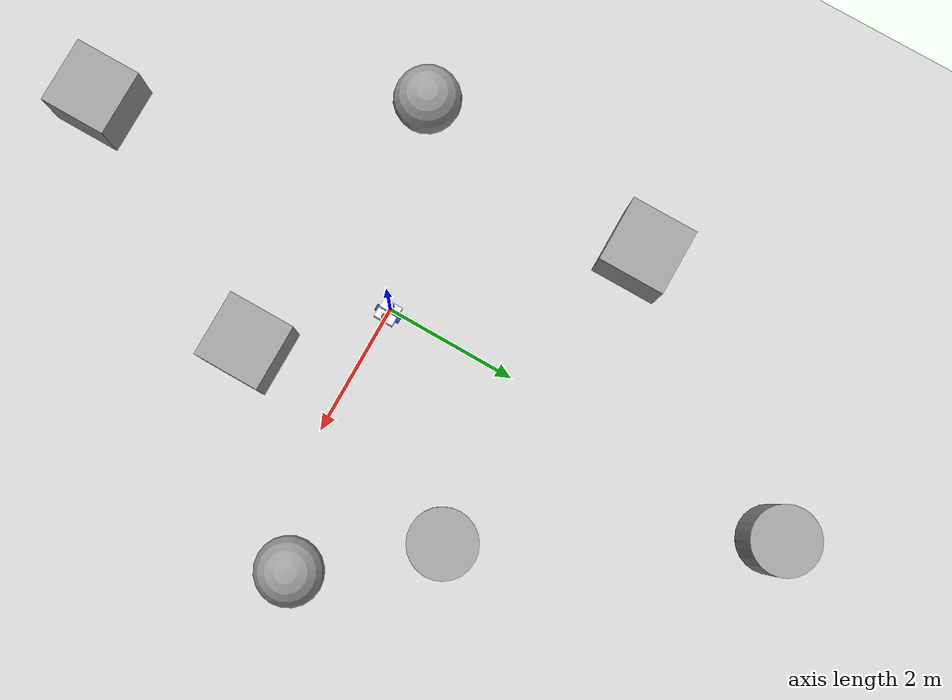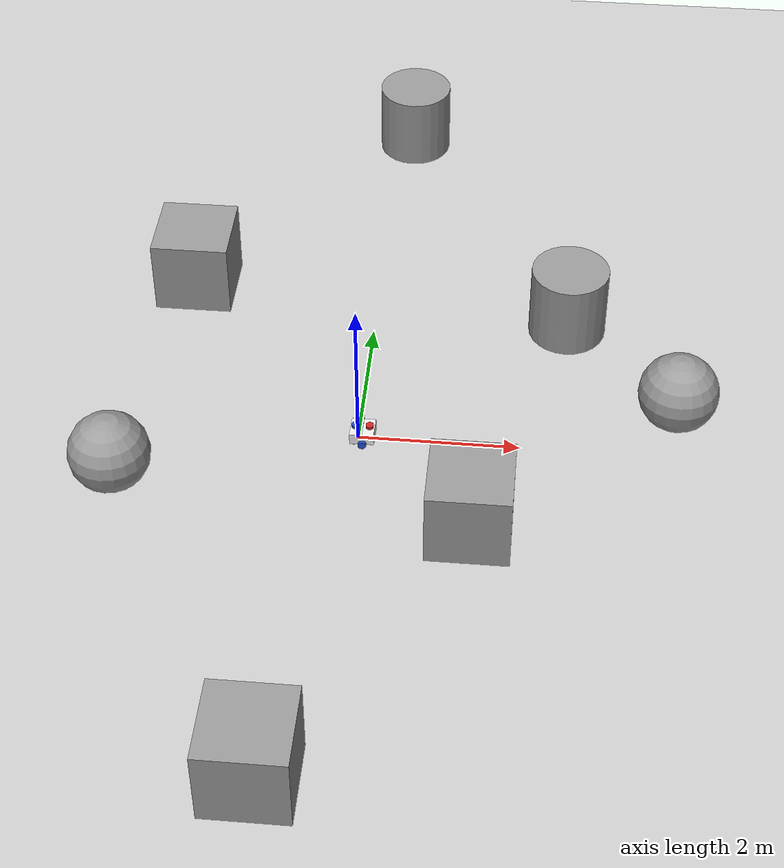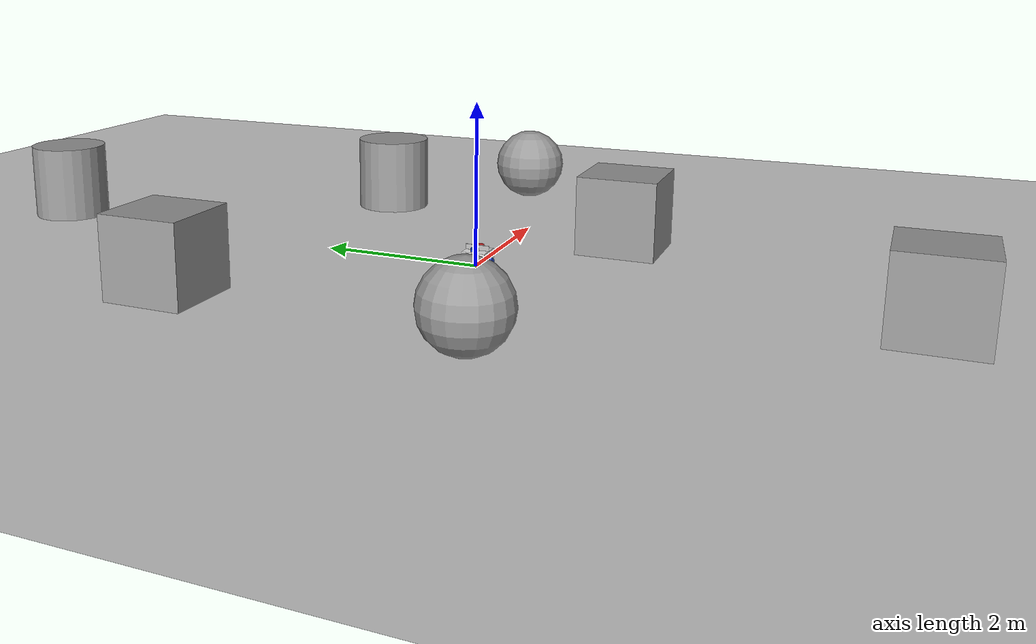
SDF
<sdf version="1.7">
 <world name="default">
  <light name="sun" type="directional">
   <pose>0 0 10 0 -0 0</pose>
   <diffuse>0.8 0.8 0.8 1</diffuse>
   <specular>0.2 0.2 0.2 1</specular>
   <attenuation>
    <range>1000</range>
    <constant>0.9</constant>
    <linear>0.01</linear>
    <quadratic>0.001</quadratic>
   </attenuation>
   <direction>-0.5 0.1 -0.9</direction>
   <spot><inner_angle>0</inner_angle><outer_angle>0</outer_angle><falloff>0</falloff></spot>
  </light>
  <model name="ground_plane">
   <static>1</static>
   <link name="link">
    <collision name="collision">
     <geometry><plane><normal>0 0 1</normal><size>100 100</size></plane></geometry>
     <surface><friction><ode><mu>100</mu><mu2>50</mu2></ode></friction></surface>
    </collision>
    <visual name="visual">
     <cast_shadows>0</cast_shadows>
     <geometry><plane><normal>0 0 1</normal><size>100 100</size></plane></geometry>
     <material>
      <script><uri>file://media/materials/scripts/gazebo.material</uri><name>Gazebo/Grey</name></script>
     </material>
    </visual>
   </link>
  </model>
  <gravity>0 0 -9.8</gravity>
  <magnetic_field>6e-06 2.3e-05 -4.2e-05</magnetic_field>
  <atmosphere type="adiabatic"/>
  <physics type="ode">
   <max_step_size>0.001</max_step_size>
   <real_time_factor>1</real_time_factor>
   <real_time_update_rate>1000</real_time_update_rate>
  </physics>
  <scene><ambient>0.4 0.4 0.4 1</ambient><background>0.7 0.7 0.7 1</background><shadows>1</shadows></scene>
  <audio><device>default</device></audio>
  <spherical_coordinates>
   <surface_model>EARTH_WGS84</surface_model>
   <latitude_deg>0</latitude_deg>
   <longitude_deg>0</longitude_deg>
   <elevation>0</elevation>
   <heading_deg>0</heading_deg>
  </spherical_coordinates>
  <model name="my_bot">
   <link name="base_link">
    <inertial>
     <pose>0.020312 0 0.123438 0 -0 0</pose>
     <mass>1.6</mass>
     <inertia>
      <ixx>0.0303323</ixx>
      <ixy>1.0842e-19</ixy>
      <ixz>0.00654922</ixz>
      <iyy>0.0350346</iyy>
      <iyz>0</iyz>
      <izz>0.0297893</izz>
     </inertia>
    </inertial>
    <collision name="base_link_fixed_joint_lump__chassis_collision">
     <pose>0.05 0 0.075 0 -0 0</pose>
     <geometry><box><size>0.3 0.3 0.15</size></box></geometry>
    </collision>
    <collision name="base_link_fixed_joint_lump__caster_wheel1_collision_1">
     <pose>0.16 -0.11 0 0 -0 0</pose>
     <geometry><sphere><radius>0.03</radius></sphere></geometry>
     <surface><friction><ode><mu>0.001</mu><mu2>0.001</mu2></ode></friction></surface>
    </collision>
    <collision name="base_link_fixed_joint_lump__caster_wheel2_collision_2">
     <pose>0.16 0.11 0 0 -0 0</pose>
     <geometry><sphere><radius>0.03</radius></sphere></geometry>
     <surface><friction><ode><mu>0.001</mu><mu2>0.001</mu2></ode></friction></surface>
    </collision>
    <collision name="base_link_fixed_joint_lump__caster_wheel3_collision_3">
     <pose>-0.05 0.11 0 0 -0 0</pose>
     <geometry><sphere><radius>0.03</radius></sphere></geometry>
     <surface><friction><ode><mu>0.001</mu><mu2>0.001</mu2></ode></friction></surface>
    </collision>
    <collision name="base_link_fixed_joint_lump__caster_wheel4_collision_4">
     <pose>-0.05 -0.11 0 0 -0 0</pose>
     <geometry><sphere><radius>0.035</radius></sphere></geometry>
     <surface><friction><ode><mu>0.001</mu><mu2>0.001</mu2></ode></friction></surface>
    </collision>
    <collision name="base_link_fixed_joint_lump__laser_frame_collision_5">
     <pose>-0.035 0 0.175 0 -0 0</pose>
     <geometry><cylinder><length>0.04</length><radius>0.05</radius></cylinder></geometry>
    </collision>
    <collision name="base_link_fixed_joint_lump__laser_frame1_collision_6">
     <pose>0.14 0 0.175 0 -0 0</pose>
     <geometry><cylinder><length>0.04</length><radius>0.05</radius></cylinder></geometry>
    </collision>
    <collision name="base_link_fixed_joint_lump__wall_collision_7">
     <pose>-0.05 0 0.25 0 -0 0</pose>
     <geometry><box><size>0.3 0.3 0.15</size></box></geometry>
    </collision>
    <visual name="base_link_fixed_joint_lump__chassis_visual">
     <pose>0.05 0 0.075 0 -0 0</pose>
     <geometry><box><size>0.3 0.3 0.15</size></box></geometry>
     <material>
      <script><name>Gazebo/White</name><uri>file://media/materials/scripts/gazebo.material</uri></script>
     </material>
    </visual>
    <visual name="base_link_fixed_joint_lump__caster_wheel1_visual_1">
     <pose>0.16 -0.11 0 0 -0 0</pose>
     <geometry><sphere><radius>0.03</radius></sphere></geometry>
     <material>
      <script><name>Gazebo/Black</name><uri>file://media/materials/scripts/gazebo.material</uri></script>
     </material>
    </visual>
    <visual name="base_link_fixed_joint_lump__caster_wheel2_visual_2">
     <pose>0.16 0.11 0 0 -0 0</pose>
     <geometry><sphere><radius>0.03</radius></sphere></geometry>
     <material>
      <script><name>Gazebo/Black</name><uri>file://media/materials/scripts/gazebo.material</uri></script>
     </material>
    </visual>
    <visual name="base_link_fixed_joint_lump__caster_wheel3_visual_3">
     <pose>-0.05 0.11 0 0 -0 0</pose>
     <geometry><sphere><radius>0.03</radius></sphere></geometry>
     <material>
      <script><name>Gazebo/Black</name><uri>file://media/materials/scripts/gazebo.material</uri></script>
     </material>
    </visual>
    <visual name="base_link_fixed_joint_lump__caster_wheel4_visual_4">
     <pose>-0.05 -0.11 0 0 -0 0</pose>
     <geometry><sphere><radius>0.035</radius></sphere></geometry>
     <material>
      <script><name>Gazebo/Black</name><uri>file://media/materials/scripts/gazebo.material</uri></script>
     </material>
    </visual>
    <visual name="base_link_fixed_joint_lump__laser_frame_visual_5">
     <pose>-0.035 0 0.175 0 -0 0</pose>
     <geometry><cylinder><length>0.04</length><radius>0.05</radius></cylinder></geometry>
     <material>
      <script><name>Gazebo/Blue</name><uri>file://media/materials/scripts/gazebo.material</uri></script>
     </material>
    </visual>
    <visual name="base_link_fixed_joint_lump__laser_frame1_visual_6">
     <pose>0.14 0 0.175 0 -0 0</pose>
     <geometry><cylinder><length>0.04</length><radius>0.05</radius></cylinder></geometry>
     <material>
      <script><name>Gazebo/Red</name><uri>file://media/materials/scripts/gazebo.material</uri></script>
     </material>
    </visual>
    <visual name="base_link_fixed_joint_lump__wall_visual_7">
     <pose>0.05 0 0.175 0 -0 1.571</pose>
     <geometry><box><size>0.3 0.01 0.08</size></box></geometry>
    </visual>
    <sensor name="laser1" type="ray">
     <visualize>1</visualize>
     <update_rate>10</update_rate>
     <ray>
      <scan>
       <horizontal>
        <samples>360</samples>
        <min_angle>-3.14</min_angle>
        <max_angle>3.14</max_angle>
        <resolution>1</resolution>
       </horizontal>
       <vertical><samples>1</samples><min_angle>0</min_angle><max_angle>0</max_angle></vertical>
      </scan>
      <range><min>0.3</min><max>12</max></range>
     </ray>
     <plugin name="laser_controller1" filename="libgazebo_ros_ray_sensor.so">
      <ros><argument>~/out:=scan1</argument></ros>
      <output_type>sensor_msgs/LaserScan</output_type>
      <frame_name>laser_frame</frame_name>
     </plugin>
     <pose>-0.035 0 0.175 0 -0 0</pose>
    </sensor>
    <sensor name="laser2" type="ray">
     <visualize>1</visualize>
     <update_rate>10</update_rate>
     <ray>
      <scan>
       <horizontal>
        <samples>360</samples>
        <min_angle>-3.14</min_angle>
        <max_angle>3.14</max_angle>
        <resolution>1</resolution>
       </horizontal>
       <vertical><samples>1</samples><min_angle>0</min_angle><max_angle>0</max_angle></vertical>
      </scan>
      <range><min>0.3</min><max>12</max></range>
     </ray>
     <plugin name="laser_controller2" filename="libgazebo_ros_ray_sensor.so">
      <ros><argument>~/out:=scan2</argument></ros>
      <output_type>sensor_msgs/LaserScan</output_type>
      <frame_name>laser_frame1</frame_name>
     </plugin>
     <pose>0.14 0 0.175 0 -0 0</pose>
    </sensor>
   </link>
   <joint name="left_wheel_joint" type="revolute">
    <pose relative_to="base_link">0.06 0.175 0.015 -1.5708 0 0</pose>
    <parent>base_link</parent>
    <child>left_wheel</child>
    <axis>
     <xyz>0 0 1</xyz>
     <limit><lower>-1e+16</lower><upper>1e+16</upper></limit>
     <dynamics><spring_reference>0</spring_reference><spring_stiffness>0</spring_stiffness></dynamics>
    </axis>
   </joint>
   <link name="left_wheel">
    <pose relative_to="left_wheel_joint">0 0 0 0 -0 0</pose>
    <inertial>
     <mass>0.1</mass>
     <inertia>
      <ixx>8.84333e-05</ixx>
      <ixy>0</ixy>
      <ixz>0</ixz>
      <iyy>8.84333e-05</iyy>
      <iyz>0</iyz>
      <izz>0.0001352</izz>
     </inertia>
    </inertial>
    <collision name="left_wheel_collision">
     <geometry><cylinder><length>0.04</length><radius>0.052</radius></cylinder></geometry>
    </collision>
    <visual name="left_wheel_visual">
     <geometry><cylinder><length>0.04</length><radius>0.052</radius></cylinder></geometry>
     <material>
      <script><name>Gazebo/Blue</name><uri>file://media/materials/scripts/gazebo.material</uri></script>
     </material>
    </visual>
   </link>
   <joint name="right_wheel_joint" type="revolute">
    <pose relative_to="base_link">0.06 -0.175 0.015 1.5708 -0 0</pose>
    <parent>base_link</parent>
    <child>right_wheel</child>
    <axis>
     <xyz>0 0 -1</xyz>
     <limit><lower>-1e+16</lower><upper>1e+16</upper></limit>
     <dynamics><spring_reference>0</spring_reference><spring_stiffness>0</spring_stiffness></dynamics>
    </axis>
   </joint>
   <link name="right_wheel">
    <pose relative_to="right_wheel_joint">0 0 0 0 -0 0</pose>
    <inertial>
     <mass>0.1</mass>
     <inertia>
      <ixx>8.84333e-05</ixx>
      <ixy>0</ixy>
      <ixz>0</ixz>
      <iyy>8.84333e-05</iyy>
      <iyz>0</iyz>
      <izz>0.0001352</izz>
     </inertia>
    </inertial>
    <collision name="right_wheel_collision">
     <geometry><cylinder><length>0.04</length><radius>0.052</radius></cylinder></geometry>
    </collision>
    <visual name="right_wheel_visual">
     <geometry><cylinder><length>0.04</length><radius>0.052</radius></cylinder></geometry>
     <material>
      <script><name>Gazebo/Blue</name><uri>file://media/materials/scripts/gazebo.material</uri></script>
     </material>
    </visual>
   </link>
   <static>0</static>
   <plugin name="diff_drive" filename="libgazebo_ros_diff_drive.so">
    <left_joint>left_wheel_joint</left_joint>
    <right_joint>right_wheel_joint</right_joint>
    <wheel_separation>0.35</wheel_separation>
    <wheel_diameter>0.1</wheel_diameter>
    <max_wheel_torque>200</max_wheel_torque>
    <max_wheel_acceleration>10.0</max_wheel_acceleration>
    <odometry_frame>odom</odometry_frame>
    <robot_base_frame>base_link</robot_base_frame>
    <publish_odom>1</publish_odom>
    <publish_odom_tf>1</publish_odom_tf>
    <publish_wheel_tf>1</publish_wheel_tf>
   </plugin>
   <pose>0.014683 0.00027 0.03591 4e-06 -0.018197 -0.01829</pose>
  </model>
  <model name="unit_sphere">
   <pose>-2.85931 -1.01526 0.5 0 -0 0</pose>
   <link name="link">
    <inertial>
     <mass>1</mass>
     <inertia><ixx>0.1</ixx><ixy>0</ixy><ixz>0</ixz><iyy>0.1</iyy><iyz>0</iyz><izz>0.1</izz></inertia>
    </inertial>
    <collision name="collision"><geometry><sphere><radius>0.5</radius></sphere></geometry></collision>
    <visual name="visual">
     <geometry><sphere><radius>0.5</radius></sphere></geometry>
     <material>
      <script><name>Gazebo/Grey</name><uri>file://media/materials/scripts/gazebo.material</uri></script>
     </material>
    </visual>
   </link>
  </model>
  <model name="unit_box">
   <pose>-2.44925 2.742 0.499995 -1e-05 -0 -0</pose>
   <link name="link">
    <inertial>
     <mass>1</mass>
     <inertia>
      <ixx>0.166667</ixx>
      <ixy>0</ixy>
      <ixz>0</ixz>
      <iyy>0.166667</iyy>
      <iyz>0</iyz>
      <izz>0.166667</izz>
     </inertia>
    </inertial>
    <collision name="collision"><geometry><box><size>1 1 1</size></box></geometry></collision>
    <visual name="visual">
     <geometry><box><size>1 1 1</size></box></geometry>
     <material>
      <script><name>Gazebo/Grey</name><uri>file://media/materials/scripts/gazebo.material</uri></script>
     </material>
    </visual>
   </link>
  </model>
  <model name="unit_cylinder">
   <pose>2.51831 2.28938 0.499992 -3e-06 -4e-06 -0</pose>
   <link name="link">
    <inertial>
     <mass>1</mass>
     <inertia><ixx>0.145833</ixx><ixy>0</ixy><ixz>0</ixz><iyy>0.145833</iyy><iyz>0</iyz><izz>0.125</izz></inertia>
    </inertial>
    <collision name="collision">
     <geometry><cylinder><radius>0.5</radius><length>1</length></cylinder></geometry>
    </collision>
    <visual name="visual">
     <geometry><cylinder><radius>0.5</radius><length>1</length></cylinder></geometry>
     <material>
      <script><name>Gazebo/Grey</name><uri>file://media/materials/scripts/gazebo.material</uri></script>
     </material>
    </visual>
   </link>
  </model>
  <model name="unit_box_0">
   <pose>1.46889 -1.45598 0.499995 -1e-05 -0 -0</pose>
   <link name="link">
    <inertial>
     <mass>1</mass>
     <inertia>
      <ixx>0.166667</ixx>
      <ixy>0</ixy>
      <ixz>0</ixz>
      <iyy>0.166667</iyy>
      <iyz>0</iyz>
      <izz>0.166667</izz>
     </inertia>
    </inertial>
    <collision name="collision"><geometry><box><size>1 1 1</size></box></geometry></collision>
    <visual name="visual">
     <geometry><box><size>1 1 1</size></box></geometry>
     <material>
      <script><name>Gazebo/Grey</name><uri>file://media/materials/scripts/gazebo.material</uri></script>
     </material>
    </visual>
   </link>
  </model>
  <model name="unit_sphere_0">
   <pose>3.9081 0.640973 0.5 0 -0 0</pose>
   <link name="link">
    <inertial>
     <mass>1</mass>
     <inertia><ixx>0.1</ixx><ixy>0</ixy><ixz>0</ixz><iyy>0.1</iyy><iyz>0</iyz><izz>0.1</izz></inertia>
    </inertial>
    <collision name="collision"><geometry><sphere><radius>0.5</radius></sphere></geometry></collision>
    <visual name="visual">
     <geometry><sphere><radius>0.5</radius></sphere></geometry>
     <material>
      <script><name>Gazebo/Grey</name><uri>file://media/materials/scripts/gazebo.material</uri></script>
     </material>
    </visual>
   </link>
  </model>
  <model name="unit_box_1">
   <pose>-0.55023 -5.15662 0.499995 -1e-05 -0 0</pose>
   <link name="link">
    <inertial>
     <mass>1</mass>
     <inertia>
      <ixx>0.166667</ixx>
      <ixy>0</ixy>
      <ixz>0</ixz>
      <iyy>0.166667</iyy>
      <iyz>0</iyz>
      <izz>0.166667</izz>
     </inertia>
    </inertial>
    <collision name="collision"><geometry><box><size>1 1 1</size></box></geometry></collision>
    <visual name="visual">
     <geometry><box><size>1 1 1</size></box></geometry>
     <material>
      <script><name>Gazebo/Grey</name><uri>file://media/materials/scripts/gazebo.material</uri></script>
     </material>
    </visual>
   </link>
  </model>
  <model name="unit_cylinder_0">
   <pose>0.180318 6.31052 0.499997 3e-06 4e-06 -0</pose>
   <link name="link">
    <inertial>
     <mass>1</mass>
     <inertia><ixx>0.145833</ixx><ixy>0</ixy><ixz>0</ixz><iyy>0.145833</iyy><iyz>0</iyz><izz>0.125</izz></inertia>
    </inertial>
    <collision name="collision">
     <geometry><cylinder><radius>0.5</radius><length>1</length></cylinder></geometry>
    </collision>
    <visual name="visual">
     <geometry><cylinder><radius>0.5</radius><length>1</length></cylinder></geometry>
     <material>
      <script><name>Gazebo/Grey</name><uri>file://media/materials/scripts/gazebo.material</uri></script>
     </material>
    </visual>
   </link>
  </model>
 </world>
</sdf>
